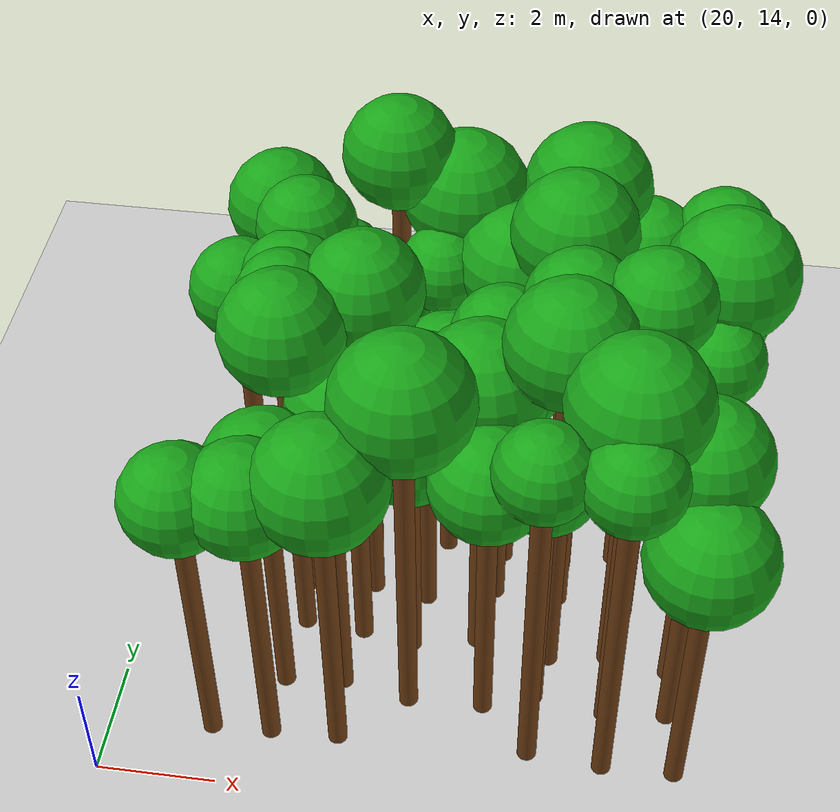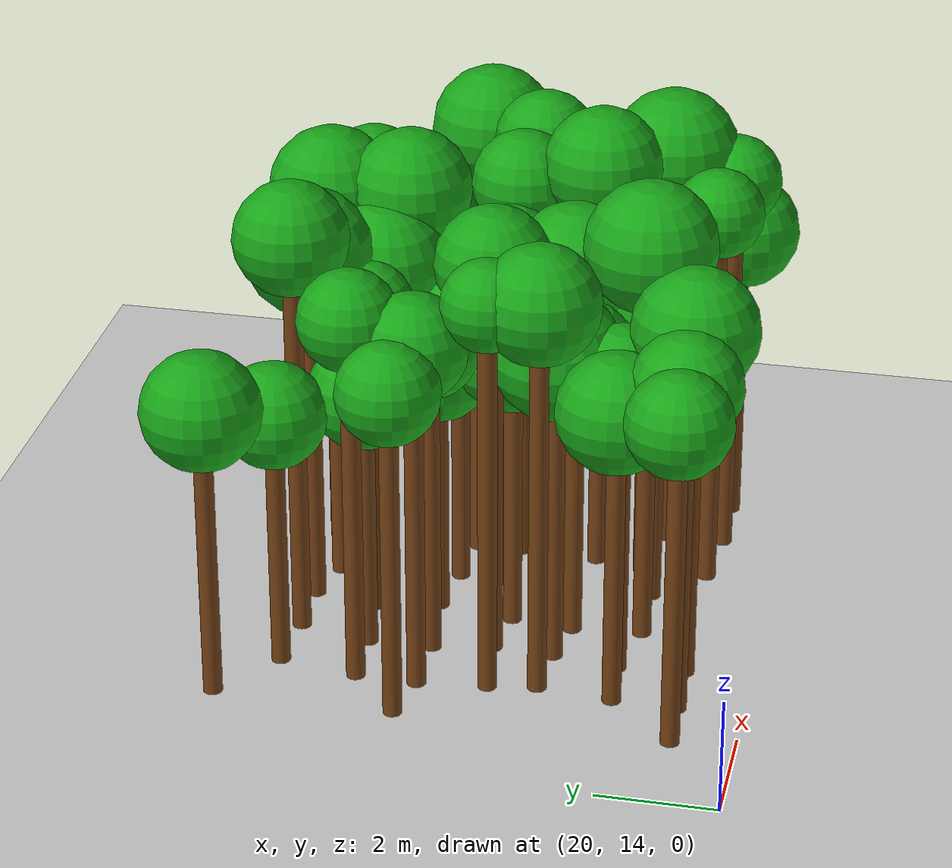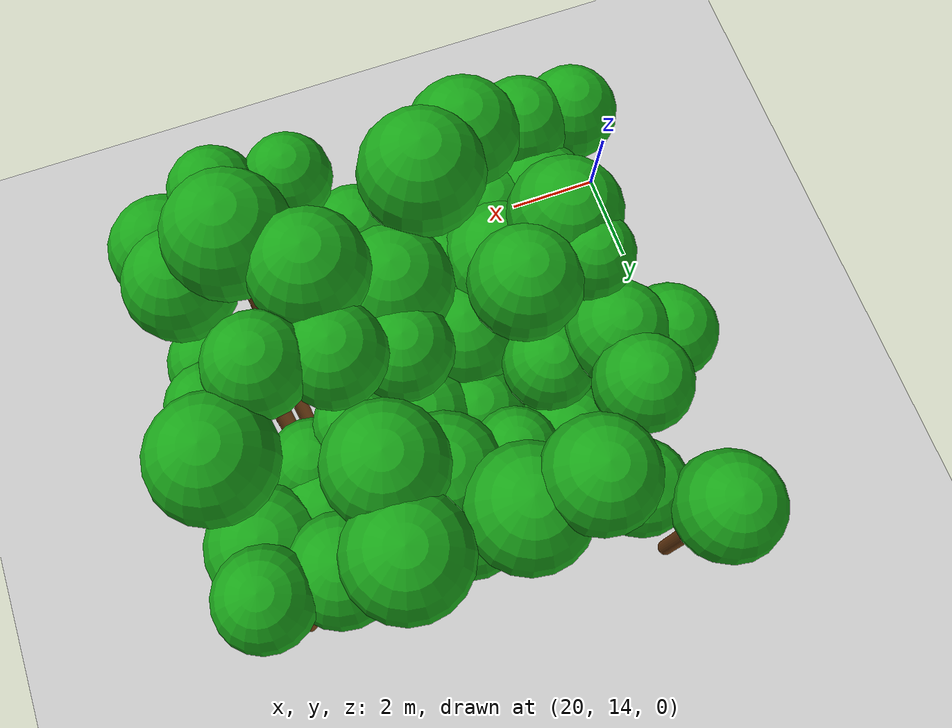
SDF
<sdf version="1.6">
 <world name="forest_world">
  <include><uri>model://sun</uri></include>
  <include><uri>model://ground_plane</uri></include>
  <model name="tree_2603_trunk">
   <static>true</static>
   <pose>21.73 15.06 2.64 0 0 0</pose>
   <link name="link">
    <collision name="collision">
     <geometry><cylinder><radius>0.16</radius><length>5.27</length></cylinder></geometry>
    </collision>
    <visual name="visual">
     <geometry><cylinder><radius>0.16</radius><length>5.27</length></cylinder></geometry>
     <material><ambient>0.35 0.20 0.05 1</ambient><diffuse>0.45 0.25 0.08 1</diffuse></material>
    </visual>
   </link>
  </model>
  <model name="tree_2603_leaf">
   <static>true</static>
   <pose>21.73 15.06 5.79 0 0 0</pose>
   <link name="link">
    <collision name="collision"><geometry><sphere><radius>0.87</radius></sphere></geometry></collision>
    <visual name="visual">
     <geometry><sphere><radius>0.87</radius></sphere></geometry>
     <material><ambient>0.05 0.45 0.05 1</ambient><diffuse>0.10 0.65 0.10 1</diffuse></material>
    </visual>
   </link>
  </model>
  <model name="tree_2607_trunk">
   <static>true</static>
   <pose>21.71 19.63 2.67 0 0 0</pose>
   <link name="link">
    <collision name="collision">
     <geometry><cylinder><radius>0.16</radius><length>5.35</length></cylinder></geometry>
    </collision>
    <visual name="visual">
     <geometry><cylinder><radius>0.16</radius><length>5.35</length></cylinder></geometry>
     <material><ambient>0.35 0.20 0.05 1</ambient><diffuse>0.45 0.25 0.08 1</diffuse></material>
    </visual>
   </link>
  </model>
  <model name="tree_2607_leaf">
   <static>true</static>
   <pose>21.71 19.63 5.86 0 0 0</pose>
   <link name="link">
    <collision name="collision"><geometry><sphere><radius>0.85</radius></sphere></geometry></collision>
    <visual name="visual">
     <geometry><sphere><radius>0.85</radius></sphere></geometry>
     <material><ambient>0.05 0.45 0.05 1</ambient><diffuse>0.10 0.65 0.10 1</diffuse></material>
    </visual>
   </link>
  </model>
  <model name="tree_2610_trunk">
   <static>true</static>
   <pose>21.76 22.68 2.30 0 0 0</pose>
   <link name="link">
    <collision name="collision">
     <geometry><cylinder><radius>0.16</radius><length>4.61</length></cylinder></geometry>
    </collision>
    <visual name="visual">
     <geometry><cylinder><radius>0.16</radius><length>4.61</length></cylinder></geometry>
     <material><ambient>0.35 0.20 0.05 1</ambient><diffuse>0.45 0.25 0.08 1</diffuse></material>
    </visual>
   </link>
  </model>
  <model name="tree_2610_leaf">
   <static>true</static>
   <pose>21.76 22.68 5.20 0 0 0</pose>
   <link name="link">
    <collision name="collision"><geometry><sphere><radius>0.99</radius></sphere></geometry></collision>
    <visual name="visual">
     <geometry><sphere><radius>0.99</radius></sphere></geometry>
     <material><ambient>0.05 0.45 0.05 1</ambient><diffuse>0.10 0.65 0.10 1</diffuse></material>
    </visual>
   </link>
  </model>
  <model name="tree_2658_trunk">
   <static>true</static>
   <pose>22.73 15.10 2.69 0 0 0</pose>
   <link name="link">
    <collision name="collision">
     <geometry><cylinder><radius>0.16</radius><length>5.37</length></cylinder></geometry>
    </collision>
    <visual name="visual">
     <geometry><cylinder><radius>0.16</radius><length>5.37</length></cylinder></geometry>
     <material><ambient>0.35 0.20 0.05 1</ambient><diffuse>0.45 0.25 0.08 1</diffuse></material>
    </visual>
   </link>
  </model>
  <model name="tree_2658_leaf">
   <static>true</static>
   <pose>22.73 15.10 5.92 0 0 0</pose>
   <link name="link">
    <collision name="collision"><geometry><sphere><radius>0.92</radius></sphere></geometry></collision>
    <visual name="visual">
     <geometry><sphere><radius>0.92</radius></sphere></geometry>
     <material><ambient>0.05 0.45 0.05 1</ambient><diffuse>0.10 0.65 0.10 1</diffuse></material>
    </visual>
   </link>
  </model>
  <model name="tree_2659_trunk">
   <static>true</static>
   <pose>22.77 16.19 2.37 0 0 0</pose>
   <link name="link">
    <collision name="collision">
     <geometry><cylinder><radius>0.16</radius><length>4.75</length></cylinder></geometry>
    </collision>
    <visual name="visual">
     <geometry><cylinder><radius>0.16</radius><length>4.75</length></cylinder></geometry>
     <material><ambient>0.35 0.20 0.05 1</ambient><diffuse>0.45 0.25 0.08 1</diffuse></material>
    </visual>
   </link>
  </model>
  <model name="tree_2659_leaf">
   <static>true</static>
   <pose>22.77 16.19 5.34 0 0 0</pose>
   <link name="link">
    <collision name="collision"><geometry><sphere><radius>1.00</radius></sphere></geometry></collision>
    <visual name="visual">
     <geometry><sphere><radius>1.00</radius></sphere></geometry>
     <material><ambient>0.05 0.45 0.05 1</ambient><diffuse>0.10 0.65 0.10 1</diffuse></material>
    </visual>
   </link>
  </model>
  <model name="tree_2660_trunk">
   <static>true</static>
   <pose>22.90 17.46 3.22 0 0 0</pose>
   <link name="link">
    <collision name="collision">
     <geometry><cylinder><radius>0.16</radius><length>6.44</length></cylinder></geometry>
    </collision>
    <visual name="visual">
     <geometry><cylinder><radius>0.16</radius><length>6.44</length></cylinder></geometry>
     <material><ambient>0.35 0.20 0.05 1</ambient><diffuse>0.45 0.25 0.08 1</diffuse></material>
    </visual>
   </link>
  </model>
  <model name="tree_2660_leaf">
   <static>true</static>
   <pose>22.90 17.46 7.03 0 0 0</pose>
   <link name="link">
    <collision name="collision"><geometry><sphere><radius>0.99</radius></sphere></geometry></collision>
    <visual name="visual">
     <geometry><sphere><radius>0.99</radius></sphere></geometry>
     <material><ambient>0.05 0.45 0.05 1</ambient><diffuse>0.10 0.65 0.10 1</diffuse></material>
    </visual>
   </link>
  </model>
  <model name="tree_2661_trunk">
   <static>true</static>
   <pose>22.77 18.27 3.27 0 0 0</pose>
   <link name="link">
    <collision name="collision">
     <geometry><cylinder><radius>0.16</radius><length>6.54</length></cylinder></geometry>
    </collision>
    <visual name="visual">
     <geometry><cylinder><radius>0.16</radius><length>6.54</length></cylinder></geometry>
     <material><ambient>0.35 0.20 0.05 1</ambient><diffuse>0.45 0.25 0.08 1</diffuse></material>
    </visual>
   </link>
  </model>
  <model name="tree_2661_leaf">
   <static>true</static>
   <pose>22.77 18.27 7.00 0 0 0</pose>
   <link name="link">
    <collision name="collision"><geometry><sphere><radius>0.76</radius></sphere></geometry></collision>
    <visual name="visual">
     <geometry><sphere><radius>0.76</radius></sphere></geometry>
     <material><ambient>0.05 0.45 0.05 1</ambient><diffuse>0.10 0.65 0.10 1</diffuse></material>
    </visual>
   </link>
  </model>
  <model name="tree_2662_trunk">
   <static>true</static>
   <pose>22.64 19.44 2.84 0 0 0</pose>
   <link name="link">
    <collision name="collision">
     <geometry><cylinder><radius>0.16</radius><length>5.68</length></cylinder></geometry>
    </collision>
    <visual name="visual">
     <geometry><cylinder><radius>0.16</radius><length>5.68</length></cylinder></geometry>
     <material><ambient>0.35 0.20 0.05 1</ambient><diffuse>0.45 0.25 0.08 1</diffuse></material>
    </visual>
   </link>
  </model>
  <model name="tree_2662_leaf">
   <static>true</static>
   <pose>22.64 19.44 6.22 0 0 0</pose>
   <link name="link">
    <collision name="collision"><geometry><sphere><radius>0.90</radius></sphere></geometry></collision>
    <visual name="visual">
     <geometry><sphere><radius>0.90</radius></sphere></geometry>
     <material><ambient>0.05 0.45 0.05 1</ambient><diffuse>0.10 0.65 0.10 1</diffuse></material>
    </visual>
   </link>
  </model>
  <model name="tree_2663_trunk">
   <static>true</static>
   <pose>22.68 20.48 3.03 0 0 0</pose>
   <link name="link">
    <collision name="collision">
     <geometry><cylinder><radius>0.16</radius><length>6.07</length></cylinder></geometry>
    </collision>
    <visual name="visual">
     <geometry><cylinder><radius>0.16</radius><length>6.07</length></cylinder></geometry>
     <material><ambient>0.35 0.20 0.05 1</ambient><diffuse>0.45 0.25 0.08 1</diffuse></material>
    </visual>
   </link>
  </model>
  <model name="tree_2663_leaf">
   <static>true</static>
   <pose>22.68 20.48 6.57 0 0 0</pose>
   <link name="link">
    <collision name="collision"><geometry><sphere><radius>0.84</radius></sphere></geometry></collision>
    <visual name="visual">
     <geometry><sphere><radius>0.84</radius></sphere></geometry>
     <material><ambient>0.05 0.45 0.05 1</ambient><diffuse>0.10 0.65 0.10 1</diffuse></material>
    </visual>
   </link>
  </model>
  <model name="tree_2664_trunk">
   <static>true</static>
   <pose>22.91 21.82 2.04 0 0 0</pose>
   <link name="link">
    <collision name="collision">
     <geometry><cylinder><radius>0.16</radius><length>4.09</length></cylinder></geometry>
    </collision>
    <visual name="visual">
     <geometry><cylinder><radius>0.16</radius><length>4.09</length></cylinder></geometry>
     <material><ambient>0.35 0.20 0.05 1</ambient><diffuse>0.45 0.25 0.08 1</diffuse></material>
    </visual>
   </link>
  </model>
  <model name="tree_2664_leaf">
   <static>true</static>
   <pose>22.91 21.82 4.62 0 0 0</pose>
   <link name="link">
    <collision name="collision"><geometry><sphere><radius>0.89</radius></sphere></geometry></collision>
    <visual name="visual">
     <geometry><sphere><radius>0.89</radius></sphere></geometry>
     <material><ambient>0.05 0.45 0.05 1</ambient><diffuse>0.10 0.65 0.10 1</diffuse></material>
    </visual>
   </link>
  </model>
  <model name="tree_2713_trunk">
   <static>true</static>
   <pose>23.86 15.14 2.86 0 0 0</pose>
   <link name="link">
    <collision name="collision">
     <geometry><cylinder><radius>0.16</radius><length>5.72</length></cylinder></geometry>
    </collision>
    <visual name="visual">
     <geometry><cylinder><radius>0.16</radius><length>5.72</length></cylinder></geometry>
     <material><ambient>0.35 0.20 0.05 1</ambient><diffuse>0.45 0.25 0.08 1</diffuse></material>
    </visual>
   </link>
  </model>
  <model name="tree_2713_leaf">
   <static>true</static>
   <pose>23.86 15.14 6.35 0 0 0</pose>
   <link name="link">
    <collision name="collision"><geometry><sphere><radius>1.05</radius></sphere></geometry></collision>
    <visual name="visual">
     <geometry><sphere><radius>1.05</radius></sphere></geometry>
     <material><ambient>0.05 0.45 0.05 1</ambient><diffuse>0.10 0.65 0.10 1</diffuse></material>
    </visual>
   </link>
  </model>
  <model name="tree_2714_trunk">
   <static>true</static>
   <pose>23.77 16.27 2.48 0 0 0</pose>
   <link name="link">
    <collision name="collision">
     <geometry><cylinder><radius>0.16</radius><length>4.96</length></cylinder></geometry>
    </collision>
    <visual name="visual">
     <geometry><cylinder><radius>0.16</radius><length>4.96</length></cylinder></geometry>
     <material><ambient>0.35 0.20 0.05 1</ambient><diffuse>0.45 0.25 0.08 1</diffuse></material>
    </visual>
   </link>
  </model>
  <model name="tree_2714_leaf">
   <static>true</static>
   <pose>23.77 16.27 5.47 0 0 0</pose>
   <link name="link">
    <collision name="collision"><geometry><sphere><radius>0.86</radius></sphere></geometry></collision>
    <visual name="visual">
     <geometry><sphere><radius>0.86</radius></sphere></geometry>
     <material><ambient>0.05 0.45 0.05 1</ambient><diffuse>0.10 0.65 0.10 1</diffuse></material>
    </visual>
   </link>
  </model>
  <model name="tree_2715_trunk">
   <static>true</static>
   <pose>23.94 17.38 2.50 0 0 0</pose>
   <link name="link">
    <collision name="collision">
     <geometry><cylinder><radius>0.16</radius><length>5.01</length></cylinder></geometry>
    </collision>
    <visual name="visual">
     <geometry><cylinder><radius>0.16</radius><length>5.01</length></cylinder></geometry>
     <material><ambient>0.35 0.20 0.05 1</ambient><diffuse>0.45 0.25 0.08 1</diffuse></material>
    </visual>
   </link>
  </model>
  <model name="tree_2715_leaf">
   <static>true</static>
   <pose>23.94 17.38 5.66 0 0 0</pose>
   <link name="link">
    <collision name="collision"><geometry><sphere><radius>1.09</radius></sphere></geometry></collision>
    <visual name="visual">
     <geometry><sphere><radius>1.09</radius></sphere></geometry>
     <material><ambient>0.05 0.45 0.05 1</ambient><diffuse>0.10 0.65 0.10 1</diffuse></material>
    </visual>
   </link>
  </model>
  <model name="tree_2716_trunk">
   <static>true</static>
   <pose>23.98 18.42 3.29 0 0 0</pose>
   <link name="link">
    <collision name="collision">
     <geometry><cylinder><radius>0.16</radius><length>6.58</length></cylinder></geometry>
    </collision>
    <visual name="visual">
     <geometry><cylinder><radius>0.16</radius><length>6.58</length></cylinder></geometry>
     <material><ambient>0.35 0.20 0.05 1</ambient><diffuse>0.45 0.25 0.08 1</diffuse></material>
    </visual>
   </link>
  </model>
  <model name="tree_2716_leaf">
   <static>true</static>
   <pose>23.98 18.42 7.15 0 0 0</pose>
   <link name="link">
    <collision name="collision"><geometry><sphere><radius>0.96</radius></sphere></geometry></collision>
    <visual name="visual">
     <geometry><sphere><radius>0.96</radius></sphere></geometry>
     <material><ambient>0.05 0.45 0.05 1</ambient><diffuse>0.10 0.65 0.10 1</diffuse></material>
    </visual>
   </link>
  </model>
  <model name="tree_2717_trunk">
   <static>true</static>
   <pose>23.80 19.43 2.56 0 0 0</pose>
   <link name="link">
    <collision name="collision">
     <geometry><cylinder><radius>0.16</radius><length>5.13</length></cylinder></geometry>
    </collision>
    <visual name="visual">
     <geometry><cylinder><radius>0.16</radius><length>5.13</length></cylinder></geometry>
     <material><ambient>0.35 0.20 0.05 1</ambient><diffuse>0.45 0.25 0.08 1</diffuse></material>
    </visual>
   </link>
  </model>
  <model name="tree_2717_leaf">
   <static>true</static>
   <pose>23.80 19.43 5.62 0 0 0</pose>
   <link name="link">
    <collision name="collision"><geometry><sphere><radius>0.82</radius></sphere></geometry></collision>
    <visual name="visual">
     <geometry><sphere><radius>0.82</radius></sphere></geometry>
     <material><ambient>0.05 0.45 0.05 1</ambient><diffuse>0.10 0.65 0.10 1</diffuse></material>
    </visual>
   </link>
  </model>
  <model name="tree_2718_trunk">
   <static>true</static>
   <pose>23.77 20.52 2.07 0 0 0</pose>
   <link name="link">
    <collision name="collision">
     <geometry><cylinder><radius>0.16</radius><length>4.15</length></cylinder></geometry>
    </collision>
    <visual name="visual">
     <geometry><cylinder><radius>0.16</radius><length>4.15</length></cylinder></geometry>
     <material><ambient>0.35 0.20 0.05 1</ambient><diffuse>0.45 0.25 0.08 1</diffuse></material>
    </visual>
   </link>
  </model>
  <model name="tree_2718_leaf">
   <static>true</static>
   <pose>23.77 20.52 4.72 0 0 0</pose>
   <link name="link">
    <collision name="collision"><geometry><sphere><radius>0.94</radius></sphere></geometry></collision>
    <visual name="visual">
     <geometry><sphere><radius>0.94</radius></sphere></geometry>
     <material><ambient>0.05 0.45 0.05 1</ambient><diffuse>0.10 0.65 0.10 1</diffuse></material>
    </visual>
   </link>
  </model>
  <model name="tree_2719_trunk">
   <static>true</static>
   <pose>24.04 21.75 3.34 0 0 0</pose>
   <link name="link">
    <collision name="collision">
     <geometry><cylinder><radius>0.16</radius><length>6.67</length></cylinder></geometry>
    </collision>
    <visual name="visual">
     <geometry><cylinder><radius>0.16</radius><length>6.67</length></cylinder></geometry>
     <material><ambient>0.35 0.20 0.05 1</ambient><diffuse>0.45 0.25 0.08 1</diffuse></material>
    </visual>
   </link>
  </model>
  <model name="tree_2719_leaf">
   <static>true</static>
   <pose>24.04 21.75 7.25 0 0 0</pose>
   <link name="link">
    <collision name="collision"><geometry><sphere><radius>0.96</radius></sphere></geometry></collision>
    <visual name="visual">
     <geometry><sphere><radius>0.96</radius></sphere></geometry>
     <material><ambient>0.05 0.45 0.05 1</ambient><diffuse>0.10 0.65 0.10 1</diffuse></material>
    </visual>
   </link>
  </model>
  <model name="tree_2769_trunk">
   <static>true</static>
   <pose>24.93 16.04 3.29 0 0 0</pose>
   <link name="link">
    <collision name="collision">
     <geometry><cylinder><radius>0.16</radius><length>6.57</length></cylinder></geometry>
    </collision>
    <visual name="visual">
     <geometry><cylinder><radius>0.16</radius><length>6.57</length></cylinder></geometry>
     <material><ambient>0.35 0.20 0.05 1</ambient><diffuse>0.45 0.25 0.08 1</diffuse></material>
    </visual>
   </link>
  </model>
  <model name="tree_2769_leaf">
   <static>true</static>
   <pose>24.93 16.04 7.23 0 0 0</pose>
   <link name="link">
    <collision name="collision"><geometry><sphere><radius>1.10</radius></sphere></geometry></collision>
    <visual name="visual">
     <geometry><sphere><radius>1.10</radius></sphere></geometry>
     <material><ambient>0.05 0.45 0.05 1</ambient><diffuse>0.10 0.65 0.10 1</diffuse></material>
    </visual>
   </link>
  </model>
  <model name="tree_2770_trunk">
   <static>true</static>
   <pose>24.83 17.22 2.28 0 0 0</pose>
   <link name="link">
    <collision name="collision">
     <geometry><cylinder><radius>0.16</radius><length>4.56</length></cylinder></geometry>
    </collision>
    <visual name="visual">
     <geometry><cylinder><radius>0.16</radius><length>4.56</length></cylinder></geometry>
     <material><ambient>0.35 0.20 0.05 1</ambient><diffuse>0.45 0.25 0.08 1</diffuse></material>
    </visual>
   </link>
  </model>
  <model name="tree_2770_leaf">
   <static>true</static>
   <pose>24.83 17.22 5.17 0 0 0</pose>
   <link name="link">
    <collision name="collision"><geometry><sphere><radius>1.02</radius></sphere></geometry></collision>
    <visual name="visual">
     <geometry><sphere><radius>1.02</radius></sphere></geometry>
     <material><ambient>0.05 0.45 0.05 1</ambient><diffuse>0.10 0.65 0.10 1</diffuse></material>
    </visual>
   </link>
  </model>
  <model name="tree_2771_trunk">
   <static>true</static>
   <pose>24.95 18.28 2.26 0 0 0</pose>
   <link name="link">
    <collision name="collision">
     <geometry><cylinder><radius>0.16</radius><length>4.53</length></cylinder></geometry>
    </collision>
    <visual name="visual">
     <geometry><cylinder><radius>0.16</radius><length>4.53</length></cylinder></geometry>
     <material><ambient>0.35 0.20 0.05 1</ambient><diffuse>0.45 0.25 0.08 1</diffuse></material>
    </visual>
   </link>
  </model>
  <model name="tree_2771_leaf">
   <static>true</static>
   <pose>24.95 18.28 5.15 0 0 0</pose>
   <link name="link">
    <collision name="collision"><geometry><sphere><radius>1.04</radius></sphere></geometry></collision>
    <visual name="visual">
     <geometry><sphere><radius>1.04</radius></sphere></geometry>
     <material><ambient>0.05 0.45 0.05 1</ambient><diffuse>0.10 0.65 0.10 1</diffuse></material>
    </visual>
   </link>
  </model>
  <model name="tree_2772_trunk">
   <static>true</static>
   <pose>25.16 19.59 2.02 0 0 0</pose>
   <link name="link">
    <collision name="collision">
     <geometry><cylinder><radius>0.16</radius><length>4.05</length></cylinder></geometry>
    </collision>
    <visual name="visual">
     <geometry><cylinder><radius>0.16</radius><length>4.05</length></cylinder></geometry>
     <material><ambient>0.35 0.20 0.05 1</ambient><diffuse>0.45 0.25 0.08 1</diffuse></material>
    </visual>
   </link>
  </model>
  <model name="tree_2772_leaf">
   <static>true</static>
   <pose>25.16 19.59 4.61 0 0 0</pose>
   <link name="link">
    <collision name="collision"><geometry><sphere><radius>0.93</radius></sphere></geometry></collision>
    <visual name="visual">
     <geometry><sphere><radius>0.93</radius></sphere></geometry>
     <material><ambient>0.05 0.45 0.05 1</ambient><diffuse>0.10 0.65 0.10 1</diffuse></material>
    </visual>
   </link>
  </model>
  <model name="tree_2773_trunk">
   <static>true</static>
   <pose>24.90 20.69 2.64 0 0 0</pose>
   <link name="link">
    <collision name="collision">
     <geometry><cylinder><radius>0.16</radius><length>5.29</length></cylinder></geometry>
    </collision>
    <visual name="visual">
     <geometry><cylinder><radius>0.16</radius><length>5.29</length></cylinder></geometry>
     <material><ambient>0.35 0.20 0.05 1</ambient><diffuse>0.45 0.25 0.08 1</diffuse></material>
    </visual>
   </link>
  </model>
  <model name="tree_2773_leaf">
   <static>true</static>
   <pose>24.90 20.69 5.74 0 0 0</pose>
   <link name="link">
    <collision name="collision"><geometry><sphere><radius>0.75</radius></sphere></geometry></collision>
    <visual name="visual">
     <geometry><sphere><radius>0.75</radius></sphere></geometry>
     <material><ambient>0.05 0.45 0.05 1</ambient><diffuse>0.10 0.65 0.10 1</diffuse></material>
    </visual>
   </link>
  </model>
  <model name="tree_2774_trunk">
   <static>true</static>
   <pose>25.14 21.77 2.93 0 0 0</pose>
   <link name="link">
    <collision name="collision">
     <geometry><cylinder><radius>0.16</radius><length>5.87</length></cylinder></geometry>
    </collision>
    <visual name="visual">
     <geometry><cylinder><radius>0.16</radius><length>5.87</length></cylinder></geometry>
     <material><ambient>0.35 0.20 0.05 1</ambient><diffuse>0.45 0.25 0.08 1</diffuse></material>
    </visual>
   </link>
  </model>
  <model name="tree_2774_leaf">
   <static>true</static>
   <pose>25.14 21.77 6.52 0 0 0</pose>
   <link name="link">
    <collision name="collision"><geometry><sphere><radius>1.08</radius></sphere></geometry></collision>
    <visual name="visual">
     <geometry><sphere><radius>1.08</radius></sphere></geometry>
     <material><ambient>0.05 0.45 0.05 1</ambient><diffuse>0.10 0.65 0.10 1</diffuse></material>
    </visual>
   </link>
  </model>
  <model name="tree_2824_trunk">
   <static>true</static>
   <pose>26.20 16.08 2.55 0 0 0</pose>
   <link name="link">
    <collision name="collision">
     <geometry><cylinder><radius>0.16</radius><length>5.11</length></cylinder></geometry>
    </collision>
    <visual name="visual">
     <geometry><cylinder><radius>0.16</radius><length>5.11</length></cylinder></geometry>
     <material><ambient>0.35 0.20 0.05 1</ambient><diffuse>0.45 0.25 0.08 1</diffuse></material>
    </visual>
   </link>
  </model>
  <model name="tree_2824_leaf">
   <static>true</static>
   <pose>26.20 16.08 5.68 0 0 0</pose>
   <link name="link">
    <collision name="collision"><geometry><sphere><radius>0.94</radius></sphere></geometry></collision>
    <visual name="visual">
     <geometry><sphere><radius>0.94</radius></sphere></geometry>
     <material><ambient>0.05 0.45 0.05 1</ambient><diffuse>0.10 0.65 0.10 1</diffuse></material>
    </visual>
   </link>
  </model>
  <model name="tree_2825_trunk">
   <static>true</static>
   <pose>25.94 17.44 2.84 0 0 0</pose>
   <link name="link">
    <collision name="collision">
     <geometry><cylinder><radius>0.16</radius><length>5.68</length></cylinder></geometry>
    </collision>
    <visual name="visual">
     <geometry><cylinder><radius>0.16</radius><length>5.68</length></cylinder></geometry>
     <material><ambient>0.35 0.20 0.05 1</ambient><diffuse>0.45 0.25 0.08 1</diffuse></material>
    </visual>
   </link>
  </model>
  <model name="tree_2825_leaf">
   <static>true</static>
   <pose>25.94 17.44 6.32 0 0 0</pose>
   <link name="link">
    <collision name="collision"><geometry><sphere><radius>1.06</radius></sphere></geometry></collision>
    <visual name="visual">
     <geometry><sphere><radius>1.06</radius></sphere></geometry>
     <material><ambient>0.05 0.45 0.05 1</ambient><diffuse>0.10 0.65 0.10 1</diffuse></material>
    </visual>
   </link>
  </model>
  <model name="tree_2826_trunk">
   <static>true</static>
   <pose>26.14 18.58 2.87 0 0 0</pose>
   <link name="link">
    <collision name="collision">
     <geometry><cylinder><radius>0.16</radius><length>5.74</length></cylinder></geometry>
    </collision>
    <visual name="visual">
     <geometry><cylinder><radius>0.16</radius><length>5.74</length></cylinder></geometry>
     <material><ambient>0.35 0.20 0.05 1</ambient><diffuse>0.45 0.25 0.08 1</diffuse></material>
    </visual>
   </link>
  </model>
  <model name="tree_2826_leaf">
   <static>true</static>
   <pose>26.14 18.58 6.27 0 0 0</pose>
   <link name="link">
    <collision name="collision"><geometry><sphere><radius>0.87</radius></sphere></geometry></collision>
    <visual name="visual">
     <geometry><sphere><radius>0.87</radius></sphere></geometry>
     <material><ambient>0.05 0.45 0.05 1</ambient><diffuse>0.10 0.65 0.10 1</diffuse></material>
    </visual>
   </link>
  </model>
  <model name="tree_2827_trunk">
   <static>true</static>
   <pose>26.20 19.44 2.11 0 0 0</pose>
   <link name="link">
    <collision name="collision">
     <geometry><cylinder><radius>0.16</radius><length>4.21</length></cylinder></geometry>
    </collision>
    <visual name="visual">
     <geometry><cylinder><radius>0.16</radius><length>4.21</length></cylinder></geometry>
     <material><ambient>0.35 0.20 0.05 1</ambient><diffuse>0.45 0.25 0.08 1</diffuse></material>
    </visual>
   </link>
  </model>
  <model name="tree_2827_leaf">
   <static>true</static>
   <pose>26.20 19.44 4.85 0 0 0</pose>
   <link name="link">
    <collision name="collision"><geometry><sphere><radius>1.07</radius></sphere></geometry></collision>
    <visual name="visual">
     <geometry><sphere><radius>1.07</radius></sphere></geometry>
     <material><ambient>0.05 0.45 0.05 1</ambient><diffuse>0.10 0.65 0.10 1</diffuse></material>
    </visual>
   </link>
  </model>
  <model name="tree_2828_trunk">
   <static>true</static>
   <pose>26.16 20.71 2.67 0 0 0</pose>
   <link name="link">
    <collision name="collision">
     <geometry><cylinder><radius>0.16</radius><length>5.35</length></cylinder></geometry>
    </collision>
    <visual name="visual">
     <geometry><cylinder><radius>0.16</radius><length>5.35</length></cylinder></geometry>
     <material><ambient>0.35 0.20 0.05 1</ambient><diffuse>0.45 0.25 0.08 1</diffuse></material>
    </visual>
   </link>
  </model>
  <model name="tree_2828_leaf">
   <static>true</static>
   <pose>26.16 20.71 5.97 0 0 0</pose>
   <link name="link">
    <collision name="collision"><geometry><sphere><radius>1.04</radius></sphere></geometry></collision>
    <visual name="visual">
     <geometry><sphere><radius>1.04</radius></sphere></geometry>
     <material><ambient>0.05 0.45 0.05 1</ambient><diffuse>0.10 0.65 0.10 1</diffuse></material>
    </visual>
   </link>
  </model>
  <model name="tree_2829_trunk">
   <static>true</static>
   <pose>25.99 21.54 2.22 0 0 0</pose>
   <link name="link">
    <collision name="collision">
     <geometry><cylinder><radius>0.16</radius><length>4.44</length></cylinder></geometry>
    </collision>
    <visual name="visual">
     <geometry><cylinder><radius>0.16</radius><length>4.44</length></cylinder></geometry>
     <material><ambient>0.35 0.20 0.05 1</ambient><diffuse>0.45 0.25 0.08 1</diffuse></material>
    </visual>
   </link>
  </model>
  <model name="tree_2829_leaf">
   <static>true</static>
   <pose>25.99 21.54 4.98 0 0 0</pose>
   <link name="link">
    <collision name="collision"><geometry><sphere><radius>0.90</radius></sphere></geometry></collision>
    <visual name="visual">
     <geometry><sphere><radius>0.90</radius></sphere></geometry>
     <material><ambient>0.05 0.45 0.05 1</ambient><diffuse>0.10 0.65 0.10 1</diffuse></material>
    </visual>
   </link>
  </model>
  <model name="tree_2878_trunk">
   <static>true</static>
   <pose>27.04 15.24 3.25 0 0 0</pose>
   <link name="link">
    <collision name="collision">
     <geometry><cylinder><radius>0.16</radius><length>6.50</length></cylinder></geometry>
    </collision>
    <visual name="visual">
     <geometry><cylinder><radius>0.16</radius><length>6.50</length></cylinder></geometry>
     <material><ambient>0.35 0.20 0.05 1</ambient><diffuse>0.45 0.25 0.08 1</diffuse></material>
    </visual>
   </link>
  </model>
  <model name="tree_2878_leaf">
   <static>true</static>
   <pose>27.04 15.24 6.95 0 0 0</pose>
   <link name="link">
    <collision name="collision"><geometry><sphere><radius>0.76</radius></sphere></geometry></collision>
    <visual name="visual">
     <geometry><sphere><radius>0.76</radius></sphere></geometry>
     <material><ambient>0.05 0.45 0.05 1</ambient><diffuse>0.10 0.65 0.10 1</diffuse></material>
    </visual>
   </link>
  </model>
  <model name="tree_2879_trunk">
   <static>true</static>
   <pose>27.04 16.38 2.50 0 0 0</pose>
   <link name="link">
    <collision name="collision">
     <geometry><cylinder><radius>0.16</radius><length>5.01</length></cylinder></geometry>
    </collision>
    <visual name="visual">
     <geometry><cylinder><radius>0.16</radius><length>5.01</length></cylinder></geometry>
     <material><ambient>0.35 0.20 0.05 1</ambient><diffuse>0.45 0.25 0.08 1</diffuse></material>
    </visual>
   </link>
  </model>
  <model name="tree_2879_leaf">
   <static>true</static>
   <pose>27.04 16.38 5.51 0 0 0</pose>
   <link name="link">
    <collision name="collision"><geometry><sphere><radius>0.84</radius></sphere></geometry></collision>
    <visual name="visual">
     <geometry><sphere><radius>0.84</radius></sphere></geometry>
     <material><ambient>0.05 0.45 0.05 1</ambient><diffuse>0.10 0.65 0.10 1</diffuse></material>
    </visual>
   </link>
  </model>
  <model name="tree_2880_trunk">
   <static>true</static>
   <pose>27.22 17.22 3.47 0 0 0</pose>
   <link name="link">
    <collision name="collision">
     <geometry><cylinder><radius>0.16</radius><length>6.95</length></cylinder></geometry>
    </collision>
    <visual name="visual">
     <geometry><cylinder><radius>0.16</radius><length>6.95</length></cylinder></geometry>
     <material><ambient>0.35 0.20 0.05 1</ambient><diffuse>0.45 0.25 0.08 1</diffuse></material>
    </visual>
   </link>
  </model>
  <model name="tree_2880_leaf">
   <static>true</static>
   <pose>27.22 17.22 7.55 0 0 0</pose>
   <link name="link">
    <collision name="collision"><geometry><sphere><radius>1.01</radius></sphere></geometry></collision>
    <visual name="visual">
     <geometry><sphere><radius>1.01</radius></sphere></geometry>
     <material><ambient>0.05 0.45 0.05 1</ambient><diffuse>0.10 0.65 0.10 1</diffuse></material>
    </visual>
   </link>
  </model>
  <model name="tree_2881_trunk">
   <static>true</static>
   <pose>27.27 18.56 3.30 0 0 0</pose>
   <link name="link">
    <collision name="collision">
     <geometry><cylinder><radius>0.16</radius><length>6.60</length></cylinder></geometry>
    </collision>
    <visual name="visual">
     <geometry><cylinder><radius>0.16</radius><length>6.60</length></cylinder></geometry>
     <material><ambient>0.35 0.20 0.05 1</ambient><diffuse>0.45 0.25 0.08 1</diffuse></material>
    </visual>
   </link>
  </model>
  <model name="tree_2881_leaf">
   <static>true</static>
   <pose>27.27 18.56 7.13 0 0 0</pose>
   <link name="link">
    <collision name="collision"><geometry><sphere><radius>0.89</radius></sphere></geometry></collision>
    <visual name="visual">
     <geometry><sphere><radius>0.89</radius></sphere></geometry>
     <material><ambient>0.05 0.45 0.05 1</ambient><diffuse>0.10 0.65 0.10 1</diffuse></material>
    </visual>
   </link>
  </model>
  <model name="tree_2882_trunk">
   <static>true</static>
   <pose>27.27 19.34 2.54 0 0 0</pose>
   <link name="link">
    <collision name="collision">
     <geometry><cylinder><radius>0.16</radius><length>5.08</length></cylinder></geometry>
    </collision>
    <visual name="visual">
     <geometry><cylinder><radius>0.16</radius><length>5.08</length></cylinder></geometry>
     <material><ambient>0.35 0.20 0.05 1</ambient><diffuse>0.45 0.25 0.08 1</diffuse></material>
    </visual>
   </link>
  </model>
  <model name="tree_2882_leaf">
   <static>true</static>
   <pose>27.27 19.34 5.53 0 0 0</pose>
   <link name="link">
    <collision name="collision"><geometry><sphere><radius>0.75</radius></sphere></geometry></collision>
    <visual name="visual">
     <geometry><sphere><radius>0.75</radius></sphere></geometry>
     <material><ambient>0.05 0.45 0.05 1</ambient><diffuse>0.10 0.65 0.10 1</diffuse></material>
    </visual>
   </link>
  </model>
  <model name="tree_2883_trunk">
   <static>true</static>
   <pose>27.05 20.46 3.14 0 0 0</pose>
   <link name="link">
    <collision name="collision">
     <geometry><cylinder><radius>0.16</radius><length>6.29</length></cylinder></geometry>
    </collision>
    <visual name="visual">
     <geometry><cylinder><radius>0.16</radius><length>6.29</length></cylinder></geometry>
     <material><ambient>0.35 0.20 0.05 1</ambient><diffuse>0.45 0.25 0.08 1</diffuse></material>
    </visual>
   </link>
  </model>
  <model name="tree_2883_leaf">
   <static>true</static>
   <pose>27.05 20.46 6.92 0 0 0</pose>
   <link name="link">
    <collision name="collision"><geometry><sphere><radius>1.05</radius></sphere></geometry></collision>
    <visual name="visual">
     <geometry><sphere><radius>1.05</radius></sphere></geometry>
     <material><ambient>0.05 0.45 0.05 1</ambient><diffuse>0.10 0.65 0.10 1</diffuse></material>
    </visual>
   </link>
  </model>
  <model name="tree_2884_trunk">
   <static>true</static>
   <pose>27.17 21.86 3.05 0 0 0</pose>
   <link name="link">
    <collision name="collision">
     <geometry><cylinder><radius>0.16</radius><length>6.11</length></cylinder></geometry>
    </collision>
    <visual name="visual">
     <geometry><cylinder><radius>0.16</radius><length>6.11</length></cylinder></geometry>
     <material><ambient>0.35 0.20 0.05 1</ambient><diffuse>0.45 0.25 0.08 1</diffuse></material>
    </visual>
   </link>
  </model>
  <model name="tree_2884_leaf">
   <static>true</static>
   <pose>27.17 21.86 6.76 0 0 0</pose>
   <link name="link">
    <collision name="collision"><geometry><sphere><radius>1.08</radius></sphere></geometry></collision>
    <visual name="visual">
     <geometry><sphere><radius>1.08</radius></sphere></geometry>
     <material><ambient>0.05 0.45 0.05 1</ambient><diffuse>0.10 0.65 0.10 1</diffuse></material>
    </visual>
   </link>
  </model>
  <model name="tree_2933_trunk">
   <static>true</static>
   <pose>28.29 15.13 3.28 0 0 0</pose>
   <link name="link">
    <collision name="collision">
     <geometry><cylinder><radius>0.16</radius><length>6.55</length></cylinder></geometry>
    </collision>
    <visual name="visual">
     <geometry><cylinder><radius>0.16</radius><length>6.55</length></cylinder></geometry>
     <material><ambient>0.35 0.20 0.05 1</ambient><diffuse>0.45 0.25 0.08 1</diffuse></material>
    </visual>
   </link>
  </model>
  <model name="tree_2933_leaf">
   <static>true</static>
   <pose>28.29 15.13 7.02 0 0 0</pose>
   <link name="link">
    <collision name="collision"><geometry><sphere><radius>0.78</radius></sphere></geometry></collision>
    <visual name="visual">
     <geometry><sphere><radius>0.78</radius></sphere></geometry>
     <material><ambient>0.05 0.45 0.05 1</ambient><diffuse>0.10 0.65 0.10 1</diffuse></material>
    </visual>
   </link>
  </model>
  <model name="tree_2934_trunk">
   <static>true</static>
   <pose>28.26 16.18 3.40 0 0 0</pose>
   <link name="link">
    <collision name="collision">
     <geometry><cylinder><radius>0.16</radius><length>6.81</length></cylinder></geometry>
    </collision>
    <visual name="visual">
     <geometry><cylinder><radius>0.16</radius><length>6.81</length></cylinder></geometry>
     <material><ambient>0.35 0.20 0.05 1</ambient><diffuse>0.45 0.25 0.08 1</diffuse></material>
    </visual>
   </link>
  </model>
  <model name="tree_2934_leaf">
   <static>true</static>
   <pose>28.26 16.18 7.46 0 0 0</pose>
   <link name="link">
    <collision name="collision"><geometry><sphere><radius>1.09</radius></sphere></geometry></collision>
    <visual name="visual">
     <geometry><sphere><radius>1.09</radius></sphere></geometry>
     <material><ambient>0.05 0.45 0.05 1</ambient><diffuse>0.10 0.65 0.10 1</diffuse></material>
    </visual>
   </link>
  </model>
  <model name="tree_2935_trunk">
   <static>true</static>
   <pose>28.22 17.37 2.11 0 0 0</pose>
   <link name="link">
    <collision name="collision">
     <geometry><cylinder><radius>0.16</radius><length>4.22</length></cylinder></geometry>
    </collision>
    <visual name="visual">
     <geometry><cylinder><radius>0.16</radius><length>4.22</length></cylinder></geometry>
     <material><ambient>0.35 0.20 0.05 1</ambient><diffuse>0.45 0.25 0.08 1</diffuse></material>
    </visual>
   </link>
  </model>
  <model name="tree_2935_leaf">
   <static>true</static>
   <pose>28.22 17.37 4.74 0 0 0</pose>
   <link name="link">
    <collision name="collision"><geometry><sphere><radius>0.87</radius></sphere></geometry></collision>
    <visual name="visual">
     <geometry><sphere><radius>0.87</radius></sphere></geometry>
     <material><ambient>0.05 0.45 0.05 1</ambient><diffuse>0.10 0.65 0.10 1</diffuse></material>
    </visual>
   </link>
  </model>
  <model name="tree_2936_trunk">
   <static>true</static>
   <pose>28.45 18.42 3.43 0 0 0</pose>
   <link name="link">
    <collision name="collision">
     <geometry><cylinder><radius>0.16</radius><length>6.86</length></cylinder></geometry>
    </collision>
    <visual name="visual">
     <geometry><cylinder><radius>0.16</radius><length>6.86</length></cylinder></geometry>
     <material><ambient>0.35 0.20 0.05 1</ambient><diffuse>0.45 0.25 0.08 1</diffuse></material>
    </visual>
   </link>
  </model>
  <model name="tree_2936_leaf">
   <static>true</static>
   <pose>28.45 18.42 7.39 0 0 0</pose>
   <link name="link">
    <collision name="collision"><geometry><sphere><radius>0.88</radius></sphere></geometry></collision>
    <visual name="visual">
     <geometry><sphere><radius>0.88</radius></sphere></geometry>
     <material><ambient>0.05 0.45 0.05 1</ambient><diffuse>0.10 0.65 0.10 1</diffuse></material>
    </visual>
   </link>
  </model>
  <model name="tree_2937_trunk">
   <static>true</static>
   <pose>28.18 19.64 2.26 0 0 0</pose>
   <link name="link">
    <collision name="collision">
     <geometry><cylinder><radius>0.16</radius><length>4.52</length></cylinder></geometry>
    </collision>
    <visual name="visual">
     <geometry><cylinder><radius>0.16</radius><length>4.52</length></cylinder></geometry>
     <material><ambient>0.35 0.20 0.05 1</ambient><diffuse>0.45 0.25 0.08 1</diffuse></material>
    </visual>
   </link>
  </model>
  <model name="tree_2937_leaf">
   <static>true</static>
   <pose>28.18 19.64 5.02 0 0 0</pose>
   <link name="link">
    <collision name="collision"><geometry><sphere><radius>0.83</radius></sphere></geometry></collision>
    <visual name="visual">
     <geometry><sphere><radius>0.83</radius></sphere></geometry>
     <material><ambient>0.05 0.45 0.05 1</ambient><diffuse>0.10 0.65 0.10 1</diffuse></material>
    </visual>
   </link>
  </model>
  <model name="tree_2938_trunk">
   <static>true</static>
   <pose>28.13 20.51 2.12 0 0 0</pose>
   <link name="link">
    <collision name="collision">
     <geometry><cylinder><radius>0.16</radius><length>4.25</length></cylinder></geometry>
    </collision>
    <visual name="visual">
     <geometry><cylinder><radius>0.16</radius><length>4.25</length></cylinder></geometry>
     <material><ambient>0.35 0.20 0.05 1</ambient><diffuse>0.45 0.25 0.08 1</diffuse></material>
    </visual>
   </link>
  </model>
  <model name="tree_2938_leaf">
   <static>true</static>
   <pose>28.13 20.51 4.86 0 0 0</pose>
   <link name="link">
    <collision name="collision"><geometry><sphere><radius>1.01</radius></sphere></geometry></collision>
    <visual name="visual">
     <geometry><sphere><radius>1.01</radius></sphere></geometry>
     <material><ambient>0.05 0.45 0.05 1</ambient><diffuse>0.10 0.65 0.10 1</diffuse></material>
    </visual>
   </link>
  </model>
  <model name="tree_2939_trunk">
   <static>true</static>
   <pose>28.22 21.60 2.56 0 0 0</pose>
   <link name="link">
    <collision name="collision">
     <geometry><cylinder><radius>0.16</radius><length>5.11</length></cylinder></geometry>
    </collision>
    <visual name="visual">
     <geometry><cylinder><radius>0.16</radius><length>5.11</length></cylinder></geometry>
     <material><ambient>0.35 0.20 0.05 1</ambient><diffuse>0.45 0.25 0.08 1</diffuse></material>
    </visual>
   </link>
  </model>
  <model name="tree_2939_leaf">
   <static>true</static>
   <pose>28.22 21.60 5.70 0 0 0</pose>
   <link name="link">
    <collision name="collision"><geometry><sphere><radius>0.97</radius></sphere></geometry></collision>
    <visual name="visual">
     <geometry><sphere><radius>0.97</radius></sphere></geometry>
     <material><ambient>0.05 0.45 0.05 1</ambient><diffuse>0.10 0.65 0.10 1</diffuse></material>
    </visual>
   </link>
  </model>
  <model name="tree_2988_trunk">
   <static>true</static>
   <pose>29.49 15.15 2.48 0 0 0</pose>
   <link name="link">
    <collision name="collision">
     <geometry><cylinder><radius>0.16</radius><length>4.95</length></cylinder></geometry>
    </collision>
    <visual name="visual">
     <geometry><cylinder><radius>0.16</radius><length>4.95</length></cylinder></geometry>
     <material><ambient>0.35 0.20 0.05 1</ambient><diffuse>0.45 0.25 0.08 1</diffuse></material>
    </visual>
   </link>
  </model>
  <model name="tree_2988_leaf">
   <static>true</static>
   <pose>29.49 15.15 5.56 0 0 0</pose>
   <link name="link">
    <collision name="collision"><geometry><sphere><radius>1.01</radius></sphere></geometry></collision>
    <visual name="visual">
     <geometry><sphere><radius>1.01</radius></sphere></geometry>
     <material><ambient>0.05 0.45 0.05 1</ambient><diffuse>0.10 0.65 0.10 1</diffuse></material>
    </visual>
   </link>
  </model>
  <model name="tree_2989_trunk">
   <static>true</static>
   <pose>29.31 16.27 2.91 0 0 0</pose>
   <link name="link">
    <collision name="collision">
     <geometry><cylinder><radius>0.16</radius><length>5.82</length></cylinder></geometry>
    </collision>
    <visual name="visual">
     <geometry><cylinder><radius>0.16</radius><length>5.82</length></cylinder></geometry>
     <material><ambient>0.35 0.20 0.05 1</ambient><diffuse>0.45 0.25 0.08 1</diffuse></material>
    </visual>
   </link>
  </model>
  <model name="tree_2989_leaf">
   <static>true</static>
   <pose>29.31 16.27 6.41 0 0 0</pose>
   <link name="link">
    <collision name="collision"><geometry><sphere><radius>0.99</radius></sphere></geometry></collision>
    <visual name="visual">
     <geometry><sphere><radius>0.99</radius></sphere></geometry>
     <material><ambient>0.05 0.45 0.05 1</ambient><diffuse>0.10 0.65 0.10 1</diffuse></material>
    </visual>
   </link>
  </model>
  <model name="tree_2990_trunk">
   <static>true</static>
   <pose>29.29 17.18 2.05 0 0 0</pose>
   <link name="link">
    <collision name="collision">
     <geometry><cylinder><radius>0.16</radius><length>4.11</length></cylinder></geometry>
    </collision>
    <visual name="visual">
     <geometry><cylinder><radius>0.16</radius><length>4.11</length></cylinder></geometry>
     <material><ambient>0.35 0.20 0.05 1</ambient><diffuse>0.45 0.25 0.08 1</diffuse></material>
    </visual>
   </link>
  </model>
  <model name="tree_2990_leaf">
   <static>true</static>
   <pose>29.29 17.18 4.65 0 0 0</pose>
   <link name="link">
    <collision name="collision"><geometry><sphere><radius>0.90</radius></sphere></geometry></collision>
    <visual name="visual">
     <geometry><sphere><radius>0.90</radius></sphere></geometry>
     <material><ambient>0.05 0.45 0.05 1</ambient><diffuse>0.10 0.65 0.10 1</diffuse></material>
    </visual>
   </link>
  </model>
  <model name="tree_2991_trunk">
   <static>true</static>
   <pose>29.42 18.47 2.92 0 0 0</pose>
   <link name="link">
    <collision name="collision">
     <geometry><cylinder><radius>0.16</radius><length>5.84</length></cylinder></geometry>
    </collision>
    <visual name="visual">
     <geometry><cylinder><radius>0.16</radius><length>5.84</length></cylinder></geometry>
     <material><ambient>0.35 0.20 0.05 1</ambient><diffuse>0.45 0.25 0.08 1</diffuse></material>
    </visual>
   </link>
  </model>
  <model name="tree_2991_leaf">
   <static>true</static>
   <pose>29.42 18.47 6.30 0 0 0</pose>
   <link name="link">
    <collision name="collision"><geometry><sphere><radius>0.76</radius></sphere></geometry></collision>
    <visual name="visual">
     <geometry><sphere><radius>0.76</radius></sphere></geometry>
     <material><ambient>0.05 0.45 0.05 1</ambient><diffuse>0.10 0.65 0.10 1</diffuse></material>
    </visual>
   </link>
  </model>
  <model name="tree_2992_trunk">
   <static>true</static>
   <pose>29.52 19.54 3.24 0 0 0</pose>
   <link name="link">
    <collision name="collision">
     <geometry><cylinder><radius>0.16</radius><length>6.48</length></cylinder></geometry>
    </collision>
    <visual name="visual">
     <geometry><cylinder><radius>0.16</radius><length>6.48</length></cylinder></geometry>
     <material><ambient>0.35 0.20 0.05 1</ambient><diffuse>0.45 0.25 0.08 1</diffuse></material>
    </visual>
   </link>
  </model>
  <model name="tree_2992_leaf">
   <static>true</static>
   <pose>29.52 19.54 7.13 0 0 0</pose>
   <link name="link">
    <collision name="collision"><geometry><sphere><radius>1.07</radius></sphere></geometry></collision>
    <visual name="visual">
     <geometry><sphere><radius>1.07</radius></sphere></geometry>
     <material><ambient>0.05 0.45 0.05 1</ambient><diffuse>0.10 0.65 0.10 1</diffuse></material>
    </visual>
   </link>
  </model>
  <model name="tree_2993_trunk">
   <static>true</static>
   <pose>29.31 20.76 2.28 0 0 0</pose>
   <link name="link">
    <collision name="collision">
     <geometry><cylinder><radius>0.16</radius><length>4.56</length></cylinder></geometry>
    </collision>
    <visual name="visual">
     <geometry><cylinder><radius>0.16</radius><length>4.56</length></cylinder></geometry>
     <material><ambient>0.35 0.20 0.05 1</ambient><diffuse>0.45 0.25 0.08 1</diffuse></material>
    </visual>
   </link>
  </model>
  <model name="tree_2993_leaf">
   <static>true</static>
   <pose>29.31 20.76 5.20 0 0 0</pose>
   <link name="link">
    <collision name="collision"><geometry><sphere><radius>1.07</radius></sphere></geometry></collision>
    <visual name="visual">
     <geometry><sphere><radius>1.07</radius></sphere></geometry>
     <material><ambient>0.05 0.45 0.05 1</ambient><diffuse>0.10 0.65 0.10 1</diffuse></material>
    </visual>
   </link>
  </model>
  <model name="tree_2994_trunk">
   <static>true</static>
   <pose>29.48 21.68 2.77 0 0 0</pose>
   <link name="link">
    <collision name="collision">
     <geometry><cylinder><radius>0.16</radius><length>5.55</length></cylinder></geometry>
    </collision>
    <visual name="visual">
     <geometry><cylinder><radius>0.16</radius><length>5.55</length></cylinder></geometry>
     <material><ambient>0.35 0.20 0.05 1</ambient><diffuse>0.45 0.25 0.08 1</diffuse></material>
    </visual>
   </link>
  </model>
  <model name="tree_2994_leaf">
   <static>true</static>
   <pose>29.48 21.68 6.07 0 0 0</pose>
   <link name="link">
    <collision name="collision"><geometry><sphere><radius>0.87</radius></sphere></geometry></collision>
    <visual name="visual">
     <geometry><sphere><radius>0.87</radius></sphere></geometry>
     <material><ambient>0.05 0.45 0.05 1</ambient><diffuse>0.10 0.65 0.10 1</diffuse></material>
    </visual>
   </link>
  </model>
 </world>
</sdf>
